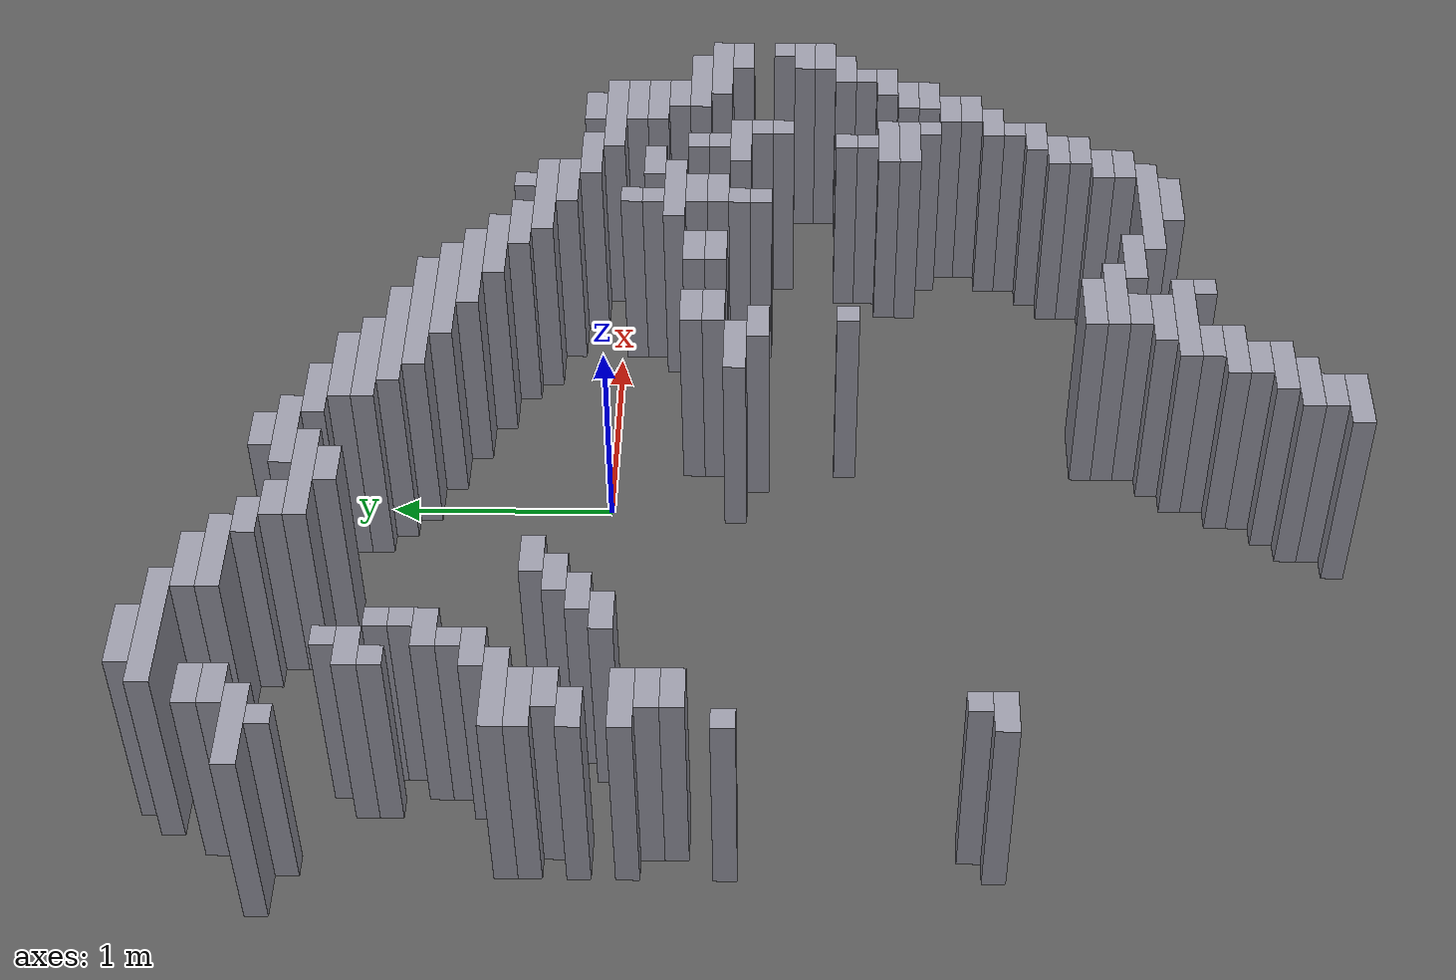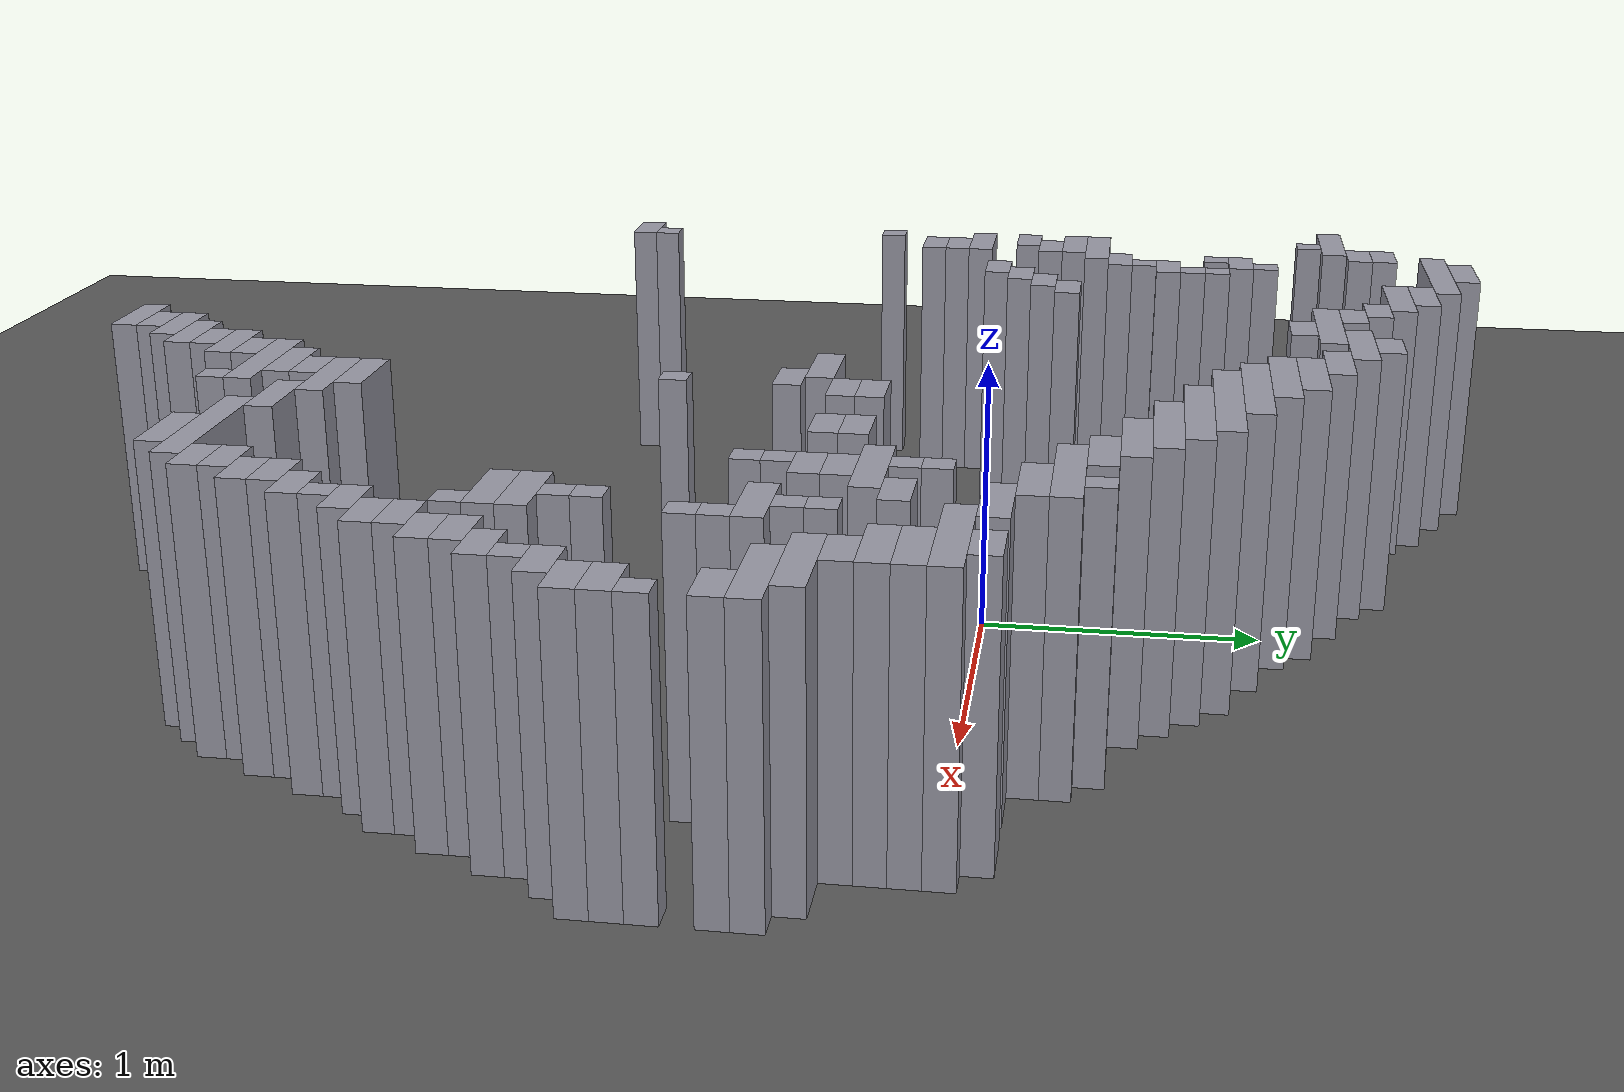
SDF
<sdf version="1.8">
 <world name="dimi">
  <model name="ground">
   <static>true</static>
   <link name="ground_link">
    <collision name="c"><geometry><plane><normal>0 0 1</normal><size>60 60</size></plane></geometry></collision>
    <visual name="v">
     <geometry><plane><normal>0 0 1</normal><size>60 60</size></plane></geometry>
     <material><ambient>0.3 0.3 0.3 1</ambient><diffuse>0.35 0.35 0.35 1</diffuse></material>
    </visual>
   </link>
  </model>
  <model name="walls">
   <static>true</static>
   <link name="wall_10">
    <pose>-1.6110 1.8290 0.5000 0 0 0</pose>
    <collision name="c"><geometry><box><size>0.3000 0.1000 1.0000</size></box></geometry></collision>
    <visual name="v">
     <geometry><box><size>0.3000 0.1000 1.0000</size></box></geometry>
     <material><ambient>0.5 0.5 0.55 1</ambient><diffuse>0.6 0.6 0.65 1</diffuse></material>
    </visual>
   </link>
   <link name="wall_13">
    <pose>-1.5610 1.7290 0.5000 0 0 0</pose>
    <collision name="c"><geometry><box><size>0.6000 0.1000 1.0000</size></box></geometry></collision>
    <visual name="v">
     <geometry><box><size>0.6000 0.1000 1.0000</size></box></geometry>
     <material><ambient>0.5 0.5 0.55 1</ambient><diffuse>0.6 0.6 0.65 1</diffuse></material>
    </visual>
   </link>
   <link name="wall_17">
    <pose>-1.2110 1.6290 0.5000 0 0 0</pose>
    <collision name="c"><geometry><box><size>0.3000 0.1000 1.0000</size></box></geometry></collision>
    <visual name="v">
     <geometry><box><size>0.3000 0.1000 1.0000</size></box></geometry>
     <material><ambient>0.5 0.5 0.55 1</ambient><diffuse>0.6 0.6 0.65 1</diffuse></material>
    </visual>
   </link>
   <link name="wall_21">
    <pose>-1.8610 1.5290 0.5000 0 0 0</pose>
    <collision name="c"><geometry><box><size>0.2000 0.1000 1.0000</size></box></geometry></collision>
    <visual name="v">
     <geometry><box><size>0.2000 0.1000 1.0000</size></box></geometry>
     <material><ambient>0.5 0.5 0.55 1</ambient><diffuse>0.6 0.6 0.65 1</diffuse></material>
    </visual>
   </link>
   <link name="wall_22">
    <pose>-1.1610 1.5290 0.5000 0 0 0</pose>
    <collision name="c"><geometry><box><size>0.4000 0.1000 1.0000</size></box></geometry></collision>
    <visual name="v">
     <geometry><box><size>0.4000 0.1000 1.0000</size></box></geometry>
     <material><ambient>0.5 0.5 0.55 1</ambient><diffuse>0.6 0.6 0.65 1</diffuse></material>
    </visual>
   </link>
   <link name="wall_27">
    <pose>-1.8610 1.4290 0.5000 0 0 0</pose>
    <collision name="c"><geometry><box><size>0.2000 0.1000 1.0000</size></box></geometry></collision>
    <visual name="v">
     <geometry><box><size>0.2000 0.1000 1.0000</size></box></geometry>
     <material><ambient>0.5 0.5 0.55 1</ambient><diffuse>0.6 0.6 0.65 1</diffuse></material>
    </visual>
   </link>
   <link name="wall_28">
    <pose>-0.9610 1.4290 0.5000 0 0 0</pose>
    <collision name="c"><geometry><box><size>0.2000 0.1000 1.0000</size></box></geometry></collision>
    <visual name="v">
     <geometry><box><size>0.2000 0.1000 1.0000</size></box></geometry>
     <material><ambient>0.5 0.5 0.55 1</ambient><diffuse>0.6 0.6 0.65 1</diffuse></material>
    </visual>
   </link>
   <link name="wall_29">
    <pose>-0.4610 1.4290 0.5000 0 0 0</pose>
    <collision name="c"><geometry><box><size>0.2000 0.1000 1.0000</size></box></geometry></collision>
    <visual name="v">
     <geometry><box><size>0.2000 0.1000 1.0000</size></box></geometry>
     <material><ambient>0.5 0.5 0.55 1</ambient><diffuse>0.6 0.6 0.65 1</diffuse></material>
    </visual>
   </link>
   <link name="wall_32">
    <pose>-2.0610 1.3290 0.5000 0 0 0</pose>
    <collision name="c"><geometry><box><size>0.4000 0.1000 1.0000</size></box></geometry></collision>
    <visual name="v">
     <geometry><box><size>0.4000 0.1000 1.0000</size></box></geometry>
     <material><ambient>0.5 0.5 0.55 1</ambient><diffuse>0.6 0.6 0.65 1</diffuse></material>
    </visual>
   </link>
   <link name="wall_33">
    <pose>-0.8610 1.3290 0.5000 0 0 0</pose>
    <collision name="c"><geometry><box><size>0.2000 0.1000 1.0000</size></box></geometry></collision>
    <visual name="v">
     <geometry><box><size>0.2000 0.1000 1.0000</size></box></geometry>
     <material><ambient>0.5 0.5 0.55 1</ambient><diffuse>0.6 0.6 0.65 1</diffuse></material>
    </visual>
   </link>
   <link name="wall_34">
    <pose>-0.4610 1.3290 0.5000 0 0 0</pose>
    <collision name="c"><geometry><box><size>0.4000 0.1000 1.0000</size></box></geometry></collision>
    <visual name="v">
     <geometry><box><size>0.4000 0.1000 1.0000</size></box></geometry>
     <material><ambient>0.5 0.5 0.55 1</ambient><diffuse>0.6 0.6 0.65 1</diffuse></material>
    </visual>
   </link>
   <link name="wall_37">
    <pose>-2.0110 1.2290 0.5000 0 0 0</pose>
    <collision name="c"><geometry><box><size>0.1000 0.1000 1.0000</size></box></geometry></collision>
    <visual name="v">
     <geometry><box><size>0.1000 0.1000 1.0000</size></box></geometry>
     <material><ambient>0.5 0.5 0.55 1</ambient><diffuse>0.6 0.6 0.65 1</diffuse></material>
    </visual>
   </link>
   <link name="wall_38">
    <pose>-0.7110 1.2290 0.5000 0 0 0</pose>
    <collision name="c"><geometry><box><size>0.5000 0.1000 1.0000</size></box></geometry></collision>
    <visual name="v">
     <geometry><box><size>0.5000 0.1000 1.0000</size></box></geometry>
     <material><ambient>0.5 0.5 0.55 1</ambient><diffuse>0.6 0.6 0.65 1</diffuse></material>
    </visual>
   </link>
   <link name="wall_39">
    <pose>-0.2110 1.2290 0.5000 0 0 0</pose>
    <collision name="c"><geometry><box><size>0.3000 0.1000 1.0000</size></box></geometry></collision>
    <visual name="v">
     <geometry><box><size>0.3000 0.1000 1.0000</size></box></geometry>
     <material><ambient>0.5 0.5 0.55 1</ambient><diffuse>0.6 0.6 0.65 1</diffuse></material>
    </visual>
   </link>
   <link name="wall_42">
    <pose>-0.6610 1.1290 0.5000 0 0 0</pose>
    <collision name="c"><geometry><box><size>0.2000 0.1000 1.0000</size></box></geometry></collision>
    <visual name="v">
     <geometry><box><size>0.2000 0.1000 1.0000</size></box></geometry>
     <material><ambient>0.5 0.5 0.55 1</ambient><diffuse>0.6 0.6 0.65 1</diffuse></material>
    </visual>
   </link>
   <link name="wall_43">
    <pose>-0.0610 1.1290 0.5000 0 0 0</pose>
    <collision name="c"><geometry><box><size>0.4000 0.1000 1.0000</size></box></geometry></collision>
    <visual name="v">
     <geometry><box><size>0.4000 0.1000 1.0000</size></box></geometry>
     <material><ambient>0.5 0.5 0.55 1</ambient><diffuse>0.6 0.6 0.65 1</diffuse></material>
    </visual>
   </link>
   <link name="wall_47">
    <pose>-1.6110 1.0290 0.5000 0 0 0</pose>
    <collision name="c"><geometry><box><size>0.1000 0.1000 1.0000</size></box></geometry></collision>
    <visual name="v">
     <geometry><box><size>0.1000 0.1000 1.0000</size></box></geometry>
     <material><ambient>0.5 0.5 0.55 1</ambient><diffuse>0.6 0.6 0.65 1</diffuse></material>
    </visual>
   </link>
   <link name="wall_48">
    <pose>-0.0110 1.0290 0.5000 0 0 0</pose>
    <collision name="c"><geometry><box><size>0.5000 0.1000 1.0000</size></box></geometry></collision>
    <visual name="v">
     <geometry><box><size>0.5000 0.1000 1.0000</size></box></geometry>
     <material><ambient>0.5 0.5 0.55 1</ambient><diffuse>0.6 0.6 0.65 1</diffuse></material>
    </visual>
   </link>
   <link name="wall_52">
    <pose>-1.6610 0.9290 0.5000 0 0 0</pose>
    <collision name="c"><geometry><box><size>0.2000 0.1000 1.0000</size></box></geometry></collision>
    <visual name="v">
     <geometry><box><size>0.2000 0.1000 1.0000</size></box></geometry>
     <material><ambient>0.5 0.5 0.55 1</ambient><diffuse>0.6 0.6 0.65 1</diffuse></material>
    </visual>
   </link>
   <link name="wall_53">
    <pose>0.1390 0.9290 0.5000 0 0 0</pose>
    <collision name="c"><geometry><box><size>0.6000 0.1000 1.0000</size></box></geometry></collision>
    <visual name="v">
     <geometry><box><size>0.6000 0.1000 1.0000</size></box></geometry>
     <material><ambient>0.5 0.5 0.55 1</ambient><diffuse>0.6 0.6 0.65 1</diffuse></material>
    </visual>
   </link>
   <link name="wall_57">
    <pose>-1.7110 0.8290 0.5000 0 0 0</pose>
    <collision name="c"><geometry><box><size>0.1000 0.1000 1.0000</size></box></geometry></collision>
    <visual name="v">
     <geometry><box><size>0.1000 0.1000 1.0000</size></box></geometry>
     <material><ambient>0.5 0.5 0.55 1</ambient><diffuse>0.6 0.6 0.65 1</diffuse></material>
    </visual>
   </link>
   <link name="wall_58">
    <pose>-1.5110 0.8290 0.5000 0 0 0</pose>
    <collision name="c"><geometry><box><size>0.1000 0.1000 1.0000</size></box></geometry></collision>
    <visual name="v">
     <geometry><box><size>0.1000 0.1000 1.0000</size></box></geometry>
     <material><ambient>0.5 0.5 0.55 1</ambient><diffuse>0.6 0.6 0.65 1</diffuse></material>
    </visual>
   </link>
   <link name="wall_59">
    <pose>0.2890 0.8290 0.5000 0 0 0</pose>
    <collision name="c"><geometry><box><size>0.7000 0.1000 1.0000</size></box></geometry></collision>
    <visual name="v">
     <geometry><box><size>0.7000 0.1000 1.0000</size></box></geometry>
     <material><ambient>0.5 0.5 0.55 1</ambient><diffuse>0.6 0.6 0.65 1</diffuse></material>
    </visual>
   </link>
   <link name="wall_62">
    <pose>-1.5110 0.7290 0.5000 0 0 0</pose>
    <collision name="c"><geometry><box><size>0.1000 0.1000 1.0000</size></box></geometry></collision>
    <visual name="v">
     <geometry><box><size>0.1000 0.1000 1.0000</size></box></geometry>
     <material><ambient>0.5 0.5 0.55 1</ambient><diffuse>0.6 0.6 0.65 1</diffuse></material>
    </visual>
   </link>
   <link name="wall_63">
    <pose>0.4390 0.7290 0.5000 0 0 0</pose>
    <collision name="c"><geometry><box><size>0.6000 0.1000 1.0000</size></box></geometry></collision>
    <visual name="v">
     <geometry><box><size>0.6000 0.1000 1.0000</size></box></geometry>
     <material><ambient>0.5 0.5 0.55 1</ambient><diffuse>0.6 0.6 0.65 1</diffuse></material>
    </visual>
   </link>
   <link name="wall_66">
    <pose>-1.5610 0.6290 0.5000 0 0 0</pose>
    <collision name="c"><geometry><box><size>0.2000 0.1000 1.0000</size></box></geometry></collision>
    <visual name="v">
     <geometry><box><size>0.2000 0.1000 1.0000</size></box></geometry>
     <material><ambient>0.5 0.5 0.55 1</ambient><diffuse>0.6 0.6 0.65 1</diffuse></material>
    </visual>
   </link>
   <link name="wall_67">
    <pose>0.5890 0.6290 0.5000 0 0 0</pose>
    <collision name="c"><geometry><box><size>0.5000 0.1000 1.0000</size></box></geometry></collision>
    <visual name="v">
     <geometry><box><size>0.5000 0.1000 1.0000</size></box></geometry>
     <material><ambient>0.5 0.5 0.55 1</ambient><diffuse>0.6 0.6 0.65 1</diffuse></material>
    </visual>
   </link>
   <link name="wall_71">
    <pose>-1.6110 0.5290 0.5000 0 0 0</pose>
    <collision name="c"><geometry><box><size>0.1000 0.1000 1.0000</size></box></geometry></collision>
    <visual name="v">
     <geometry><box><size>0.1000 0.1000 1.0000</size></box></geometry>
     <material><ambient>0.5 0.5 0.55 1</ambient><diffuse>0.6 0.6 0.65 1</diffuse></material>
    </visual>
   </link>
   <link name="wall_72">
    <pose>0.7390 0.5290 0.5000 0 0 0</pose>
    <collision name="c"><geometry><box><size>0.4000 0.1000 1.0000</size></box></geometry></collision>
    <visual name="v">
     <geometry><box><size>0.4000 0.1000 1.0000</size></box></geometry>
     <material><ambient>0.5 0.5 0.55 1</ambient><diffuse>0.6 0.6 0.65 1</diffuse></material>
    </visual>
   </link>
   <link name="wall_76">
    <pose>-1.6610 0.4290 0.5000 0 0 0</pose>
    <collision name="c"><geometry><box><size>0.2000 0.1000 1.0000</size></box></geometry></collision>
    <visual name="v">
     <geometry><box><size>0.2000 0.1000 1.0000</size></box></geometry>
     <material><ambient>0.5 0.5 0.55 1</ambient><diffuse>0.6 0.6 0.65 1</diffuse></material>
    </visual>
   </link>
   <link name="wall_77">
    <pose>0.8890 0.4290 0.5000 0 0 0</pose>
    <collision name="c"><geometry><box><size>0.3000 0.1000 1.0000</size></box></geometry></collision>
    <visual name="v">
     <geometry><box><size>0.3000 0.1000 1.0000</size></box></geometry>
     <material><ambient>0.5 0.5 0.55 1</ambient><diffuse>0.6 0.6 0.65 1</diffuse></material>
    </visual>
   </link>
   <link name="wall_78">
    <pose>1.1890 0.4290 0.5000 0 0 0</pose>
    <collision name="c"><geometry><box><size>0.1000 0.1000 1.0000</size></box></geometry></collision>
    <visual name="v">
     <geometry><box><size>0.1000 0.1000 1.0000</size></box></geometry>
     <material><ambient>0.5 0.5 0.55 1</ambient><diffuse>0.6 0.6 0.65 1</diffuse></material>
    </visual>
   </link>
   <link name="wall_81">
    <pose>-1.8610 0.3290 0.5000 0 0 0</pose>
    <collision name="c"><geometry><box><size>0.4000 0.1000 1.0000</size></box></geometry></collision>
    <visual name="v">
     <geometry><box><size>0.4000 0.1000 1.0000</size></box></geometry>
     <material><ambient>0.5 0.5 0.55 1</ambient><diffuse>0.6 0.6 0.65 1</diffuse></material>
    </visual>
   </link>
   <link name="wall_82">
    <pose>1.0890 0.3290 0.5000 0 0 0</pose>
    <collision name="c"><geometry><box><size>0.5000 0.1000 1.0000</size></box></geometry></collision>
    <visual name="v">
     <geometry><box><size>0.5000 0.1000 1.0000</size></box></geometry>
     <material><ambient>0.5 0.5 0.55 1</ambient><diffuse>0.6 0.6 0.65 1</diffuse></material>
    </visual>
   </link>
   <link name="wall_85">
    <pose>-1.9110 0.2290 0.5000 0 0 0</pose>
    <collision name="c"><geometry><box><size>0.3000 0.1000 1.0000</size></box></geometry></collision>
    <visual name="v">
     <geometry><box><size>0.3000 0.1000 1.0000</size></box></geometry>
     <material><ambient>0.5 0.5 0.55 1</ambient><diffuse>0.6 0.6 0.65 1</diffuse></material>
    </visual>
   </link>
   <link name="wall_86">
    <pose>-1.1610 0.2290 0.5000 0 0 0</pose>
    <collision name="c"><geometry><box><size>0.2000 0.1000 1.0000</size></box></geometry></collision>
    <visual name="v">
     <geometry><box><size>0.2000 0.1000 1.0000</size></box></geometry>
     <material><ambient>0.5 0.5 0.55 1</ambient><diffuse>0.6 0.6 0.65 1</diffuse></material>
    </visual>
   </link>
   <link name="wall_87">
    <pose>1.1890 0.2290 0.5000 0 0 0</pose>
    <collision name="c"><geometry><box><size>0.3000 0.1000 1.0000</size></box></geometry></collision>
    <visual name="v">
     <geometry><box><size>0.3000 0.1000 1.0000</size></box></geometry>
     <material><ambient>0.5 0.5 0.55 1</ambient><diffuse>0.6 0.6 0.65 1</diffuse></material>
    </visual>
   </link>
   <link name="wall_90">
    <pose>-1.8610 0.1290 0.5000 0 0 0</pose>
    <collision name="c"><geometry><box><size>0.2000 0.1000 1.0000</size></box></geometry></collision>
    <visual name="v">
     <geometry><box><size>0.2000 0.1000 1.0000</size></box></geometry>
     <material><ambient>0.5 0.5 0.55 1</ambient><diffuse>0.6 0.6 0.65 1</diffuse></material>
    </visual>
   </link>
   <link name="wall_91">
    <pose>-1.2610 0.1290 0.5000 0 0 0</pose>
    <collision name="c"><geometry><box><size>0.2000 0.1000 1.0000</size></box></geometry></collision>
    <visual name="v">
     <geometry><box><size>0.2000 0.1000 1.0000</size></box></geometry>
     <material><ambient>0.5 0.5 0.55 1</ambient><diffuse>0.6 0.6 0.65 1</diffuse></material>
    </visual>
   </link>
   <link name="wall_92">
    <pose>1.3890 0.1290 0.5000 0 0 0</pose>
    <collision name="c"><geometry><box><size>0.3000 0.1000 1.0000</size></box></geometry></collision>
    <visual name="v">
     <geometry><box><size>0.3000 0.1000 1.0000</size></box></geometry>
     <material><ambient>0.5 0.5 0.55 1</ambient><diffuse>0.6 0.6 0.65 1</diffuse></material>
    </visual>
   </link>
   <link name="wall_93">
    <pose>1.7390 0.1290 0.5000 0 0 0</pose>
    <collision name="c"><geometry><box><size>0.2000 0.1000 1.0000</size></box></geometry></collision>
    <visual name="v">
     <geometry><box><size>0.2000 0.1000 1.0000</size></box></geometry>
     <material><ambient>0.5 0.5 0.55 1</ambient><diffuse>0.6 0.6 0.65 1</diffuse></material>
    </visual>
   </link>
   <link name="wall_97">
    <pose>-1.9610 0.0290 0.5000 0 0 0</pose>
    <collision name="c"><geometry><box><size>0.2000 0.1000 1.0000</size></box></geometry></collision>
    <visual name="v">
     <geometry><box><size>0.2000 0.1000 1.0000</size></box></geometry>
     <material><ambient>0.5 0.5 0.55 1</ambient><diffuse>0.6 0.6 0.65 1</diffuse></material>
    </visual>
   </link>
   <link name="wall_98">
    <pose>-1.3610 0.0290 0.5000 0 0 0</pose>
    <collision name="c"><geometry><box><size>0.2000 0.1000 1.0000</size></box></geometry></collision>
    <visual name="v">
     <geometry><box><size>0.2000 0.1000 1.0000</size></box></geometry>
     <material><ambient>0.5 0.5 0.55 1</ambient><diffuse>0.6 0.6 0.65 1</diffuse></material>
    </visual>
   </link>
   <link name="wall_99">
    <pose>1.6890 0.0290 0.5000 0 0 0</pose>
    <collision name="c"><geometry><box><size>0.5000 0.1000 1.0000</size></box></geometry></collision>
    <visual name="v">
     <geometry><box><size>0.5000 0.1000 1.0000</size></box></geometry>
     <material><ambient>0.5 0.5 0.55 1</ambient><diffuse>0.6 0.6 0.65 1</diffuse></material>
    </visual>
   </link>
   <link name="wall_105">
    <pose>-1.4610 -0.0710 0.5000 0 0 0</pose>
    <collision name="c"><geometry><box><size>0.2000 0.1000 1.0000</size></box></geometry></collision>
    <visual name="v">
     <geometry><box><size>0.2000 0.1000 1.0000</size></box></geometry>
     <material><ambient>0.5 0.5 0.55 1</ambient><diffuse>0.6 0.6 0.65 1</diffuse></material>
    </visual>
   </link>
   <link name="wall_106">
    <pose>1.0890 -0.0710 0.5000 0 0 0</pose>
    <collision name="c"><geometry><box><size>0.1000 0.1000 1.0000</size></box></geometry></collision>
    <visual name="v">
     <geometry><box><size>0.1000 0.1000 1.0000</size></box></geometry>
     <material><ambient>0.5 0.5 0.55 1</ambient><diffuse>0.6 0.6 0.65 1</diffuse></material>
    </visual>
   </link>
   <link name="wall_107">
    <pose>1.7890 -0.0710 0.5000 0 0 0</pose>
    <collision name="c"><geometry><box><size>0.3000 0.1000 1.0000</size></box></geometry></collision>
    <visual name="v">
     <geometry><box><size>0.3000 0.1000 1.0000</size></box></geometry>
     <material><ambient>0.5 0.5 0.55 1</ambient><diffuse>0.6 0.6 0.65 1</diffuse></material>
    </visual>
   </link>
   <link name="wall_114">
    <pose>-1.9110 -0.1710 0.5000 0 0 0</pose>
    <collision name="c"><geometry><box><size>0.3000 0.1000 1.0000</size></box></geometry></collision>
    <visual name="v">
     <geometry><box><size>0.3000 0.1000 1.0000</size></box></geometry>
     <material><ambient>0.5 0.5 0.55 1</ambient><diffuse>0.6 0.6 0.65 1</diffuse></material>
    </visual>
   </link>
   <link name="wall_115">
    <pose>1.0890 -0.1710 0.5000 0 0 0</pose>
    <collision name="c"><geometry><box><size>0.1000 0.1000 1.0000</size></box></geometry></collision>
    <visual name="v">
     <geometry><box><size>0.1000 0.1000 1.0000</size></box></geometry>
     <material><ambient>0.5 0.5 0.55 1</ambient><diffuse>0.6 0.6 0.65 1</diffuse></material>
    </visual>
   </link>
   <link name="wall_116">
    <pose>1.3390 -0.1710 0.5000 0 0 0</pose>
    <collision name="c"><geometry><box><size>0.2000 0.1000 1.0000</size></box></geometry></collision>
    <visual name="v">
     <geometry><box><size>0.2000 0.1000 1.0000</size></box></geometry>
     <material><ambient>0.5 0.5 0.55 1</ambient><diffuse>0.6 0.6 0.65 1</diffuse></material>
    </visual>
   </link>
   <link name="wall_117">
    <pose>1.7890 -0.1710 0.5000 0 0 0</pose>
    <collision name="c"><geometry><box><size>0.3000 0.1000 1.0000</size></box></geometry></collision>
    <visual name="v">
     <geometry><box><size>0.3000 0.1000 1.0000</size></box></geometry>
     <material><ambient>0.5 0.5 0.55 1</ambient><diffuse>0.6 0.6 0.65 1</diffuse></material>
    </visual>
   </link>
   <link name="wall_124">
    <pose>-1.8610 -0.2710 0.5000 0 0 0</pose>
    <collision name="c"><geometry><box><size>0.2000 0.1000 1.0000</size></box></geometry></collision>
    <visual name="v">
     <geometry><box><size>0.2000 0.1000 1.0000</size></box></geometry>
     <material><ambient>0.5 0.5 0.55 1</ambient><diffuse>0.6 0.6 0.65 1</diffuse></material>
    </visual>
   </link>
   <link name="wall_125">
    <pose>1.1390 -0.2710 0.5000 0 0 0</pose>
    <collision name="c"><geometry><box><size>0.4000 0.1000 1.0000</size></box></geometry></collision>
    <visual name="v">
     <geometry><box><size>0.4000 0.1000 1.0000</size></box></geometry>
     <material><ambient>0.5 0.5 0.55 1</ambient><diffuse>0.6 0.6 0.65 1</diffuse></material>
    </visual>
   </link>
   <link name="wall_126">
    <pose>1.8390 -0.2710 0.5000 0 0 0</pose>
    <collision name="c"><geometry><box><size>0.2000 0.1000 1.0000</size></box></geometry></collision>
    <visual name="v">
     <geometry><box><size>0.2000 0.1000 1.0000</size></box></geometry>
     <material><ambient>0.5 0.5 0.55 1</ambient><diffuse>0.6 0.6 0.65 1</diffuse></material>
    </visual>
   </link>
   <link name="wall_134">
    <pose>-1.8610 -0.3710 0.5000 0 0 0</pose>
    <collision name="c"><geometry><box><size>0.2000 0.1000 1.0000</size></box></geometry></collision>
    <visual name="v">
     <geometry><box><size>0.2000 0.1000 1.0000</size></box></geometry>
     <material><ambient>0.5 0.5 0.55 1</ambient><diffuse>0.6 0.6 0.65 1</diffuse></material>
    </visual>
   </link>
   <link name="wall_135">
    <pose>0.3390 -0.3710 0.5000 0 0 0</pose>
    <collision name="c"><geometry><box><size>0.2000 0.1000 1.0000</size></box></geometry></collision>
    <visual name="v">
     <geometry><box><size>0.2000 0.1000 1.0000</size></box></geometry>
     <material><ambient>0.5 0.5 0.55 1</ambient><diffuse>0.6 0.6 0.65 1</diffuse></material>
    </visual>
   </link>
   <link name="wall_136">
    <pose>0.7390 -0.3710 0.5000 0 0 0</pose>
    <collision name="c"><geometry><box><size>0.2000 0.1000 1.0000</size></box></geometry></collision>
    <visual name="v">
     <geometry><box><size>0.2000 0.1000 1.0000</size></box></geometry>
     <material><ambient>0.5 0.5 0.55 1</ambient><diffuse>0.6 0.6 0.65 1</diffuse></material>
    </visual>
   </link>
   <link name="wall_137">
    <pose>1.1390 -0.3710 0.5000 0 0 0</pose>
    <collision name="c"><geometry><box><size>0.2000 0.1000 1.0000</size></box></geometry></collision>
    <visual name="v">
     <geometry><box><size>0.2000 0.1000 1.0000</size></box></geometry>
     <material><ambient>0.5 0.5 0.55 1</ambient><diffuse>0.6 0.6 0.65 1</diffuse></material>
    </visual>
   </link>
   <link name="wall_138">
    <pose>1.4890 -0.3710 0.5000 0 0 0</pose>
    <collision name="c"><geometry><box><size>0.1000 0.1000 1.0000</size></box></geometry></collision>
    <visual name="v">
     <geometry><box><size>0.1000 0.1000 1.0000</size></box></geometry>
     <material><ambient>0.5 0.5 0.55 1</ambient><diffuse>0.6 0.6 0.65 1</diffuse></material>
    </visual>
   </link>
   <link name="wall_139">
    <pose>1.9390 -0.3710 0.5000 0 0 0</pose>
    <collision name="c"><geometry><box><size>0.4000 0.1000 1.0000</size></box></geometry></collision>
    <visual name="v">
     <geometry><box><size>0.4000 0.1000 1.0000</size></box></geometry>
     <material><ambient>0.5 0.5 0.55 1</ambient><diffuse>0.6 0.6 0.65 1</diffuse></material>
    </visual>
   </link>
   <link name="wall_146">
    <pose>0.3390 -0.4710 0.5000 0 0 0</pose>
    <collision name="c"><geometry><box><size>0.2000 0.1000 1.0000</size></box></geometry></collision>
    <visual name="v">
     <geometry><box><size>0.2000 0.1000 1.0000</size></box></geometry>
     <material><ambient>0.5 0.5 0.55 1</ambient><diffuse>0.6 0.6 0.65 1</diffuse></material>
    </visual>
   </link>
   <link name="wall_147">
    <pose>0.7390 -0.4710 0.5000 0 0 0</pose>
    <collision name="c"><geometry><box><size>0.2000 0.1000 1.0000</size></box></geometry></collision>
    <visual name="v">
     <geometry><box><size>0.2000 0.1000 1.0000</size></box></geometry>
     <material><ambient>0.5 0.5 0.55 1</ambient><diffuse>0.6 0.6 0.65 1</diffuse></material>
    </visual>
   </link>
   <link name="wall_148">
    <pose>1.1390 -0.4710 0.5000 0 0 0</pose>
    <collision name="c"><geometry><box><size>0.2000 0.1000 1.0000</size></box></geometry></collision>
    <visual name="v">
     <geometry><box><size>0.2000 0.1000 1.0000</size></box></geometry>
     <material><ambient>0.5 0.5 0.55 1</ambient><diffuse>0.6 0.6 0.65 1</diffuse></material>
    </visual>
   </link>
   <link name="wall_149">
    <pose>1.4890 -0.4710 0.5000 0 0 0</pose>
    <collision name="c"><geometry><box><size>0.1000 0.1000 1.0000</size></box></geometry></collision>
    <visual name="v">
     <geometry><box><size>0.1000 0.1000 1.0000</size></box></geometry>
     <material><ambient>0.5 0.5 0.55 1</ambient><diffuse>0.6 0.6 0.65 1</diffuse></material>
    </visual>
   </link>
   <link name="wall_150">
    <pose>2.0390 -0.4710 0.5000 0 0 0</pose>
    <collision name="c"><geometry><box><size>0.4000 0.1000 1.0000</size></box></geometry></collision>
    <visual name="v">
     <geometry><box><size>0.4000 0.1000 1.0000</size></box></geometry>
     <material><ambient>0.5 0.5 0.55 1</ambient><diffuse>0.6 0.6 0.65 1</diffuse></material>
    </visual>
   </link>
   <link name="wall_156">
    <pose>-2.0110 -0.5710 0.5000 0 0 0</pose>
    <collision name="c"><geometry><box><size>0.1000 0.1000 1.0000</size></box></geometry></collision>
    <visual name="v">
     <geometry><box><size>0.1000 0.1000 1.0000</size></box></geometry>
     <material><ambient>0.5 0.5 0.55 1</ambient><diffuse>0.6 0.6 0.65 1</diffuse></material>
    </visual>
   </link>
   <link name="wall_157">
    <pose>0.0890 -0.5710 0.5000 0 0 0</pose>
    <collision name="c"><geometry><box><size>0.3000 0.1000 1.0000</size></box></geometry></collision>
    <visual name="v">
     <geometry><box><size>0.3000 0.1000 1.0000</size></box></geometry>
     <material><ambient>0.5 0.5 0.55 1</ambient><diffuse>0.6 0.6 0.65 1</diffuse></material>
    </visual>
   </link>
   <link name="wall_158">
    <pose>1.0890 -0.5710 0.5000 0 0 0</pose>
    <collision name="c"><geometry><box><size>0.1000 0.1000 1.0000</size></box></geometry></collision>
    <visual name="v">
     <geometry><box><size>0.1000 0.1000 1.0000</size></box></geometry>
     <material><ambient>0.5 0.5 0.55 1</ambient><diffuse>0.6 0.6 0.65 1</diffuse></material>
    </visual>
   </link>
   <link name="wall_159">
    <pose>1.4890 -0.5710 0.5000 0 0 0</pose>
    <collision name="c"><geometry><box><size>0.3000 0.1000 1.0000</size></box></geometry></collision>
    <visual name="v">
     <geometry><box><size>0.3000 0.1000 1.0000</size></box></geometry>
     <material><ambient>0.5 0.5 0.55 1</ambient><diffuse>0.6 0.6 0.65 1</diffuse></material>
    </visual>
   </link>
   <link name="wall_160">
    <pose>2.1390 -0.5710 0.5000 0 0 0</pose>
    <collision name="c"><geometry><box><size>0.2000 0.1000 1.0000</size></box></geometry></collision>
    <visual name="v">
     <geometry><box><size>0.2000 0.1000 1.0000</size></box></geometry>
     <material><ambient>0.5 0.5 0.55 1</ambient><diffuse>0.6 0.6 0.65 1</diffuse></material>
    </visual>
   </link>
   <link name="wall_167">
    <pose>0.2390 -0.6710 0.5000 0 0 0</pose>
    <collision name="c"><geometry><box><size>0.2000 0.1000 1.0000</size></box></geometry></collision>
    <visual name="v">
     <geometry><box><size>0.2000 0.1000 1.0000</size></box></geometry>
     <material><ambient>0.5 0.5 0.55 1</ambient><diffuse>0.6 0.6 0.65 1</diffuse></material>
    </visual>
   </link>
   <link name="wall_168">
    <pose>1.0890 -0.6710 0.5000 0 0 0</pose>
    <collision name="c"><geometry><box><size>0.1000 0.1000 1.0000</size></box></geometry></collision>
    <visual name="v">
     <geometry><box><size>0.1000 0.1000 1.0000</size></box></geometry>
     <material><ambient>0.5 0.5 0.55 1</ambient><diffuse>0.6 0.6 0.65 1</diffuse></material>
    </visual>
   </link>
   <link name="wall_169">
    <pose>1.5890 -0.6710 0.5000 0 0 0</pose>
    <collision name="c"><geometry><box><size>0.1000 0.1000 1.0000</size></box></geometry></collision>
    <visual name="v">
     <geometry><box><size>0.1000 0.1000 1.0000</size></box></geometry>
     <material><ambient>0.5 0.5 0.55 1</ambient><diffuse>0.6 0.6 0.65 1</diffuse></material>
    </visual>
   </link>
   <link name="wall_174">
    <pose>1.5890 -0.7710 0.5000 0 0 0</pose>
    <collision name="c"><geometry><box><size>0.1000 0.1000 1.0000</size></box></geometry></collision>
    <visual name="v">
     <geometry><box><size>0.1000 0.1000 1.0000</size></box></geometry>
     <material><ambient>0.5 0.5 0.55 1</ambient><diffuse>0.6 0.6 0.65 1</diffuse></material>
    </visual>
   </link>
   <link name="wall_175">
    <pose>2.1890 -0.7710 0.5000 0 0 0</pose>
    <collision name="c"><geometry><box><size>0.1000 0.1000 1.0000</size></box></geometry></collision>
    <visual name="v">
     <geometry><box><size>0.1000 0.1000 1.0000</size></box></geometry>
     <material><ambient>0.5 0.5 0.55 1</ambient><diffuse>0.6 0.6 0.65 1</diffuse></material>
    </visual>
   </link>
   <link name="wall_180">
    <pose>2.1390 -0.8710 0.5000 0 0 0</pose>
    <collision name="c"><geometry><box><size>0.2000 0.1000 1.0000</size></box></geometry></collision>
    <visual name="v">
     <geometry><box><size>0.2000 0.1000 1.0000</size></box></geometry>
     <material><ambient>0.5 0.5 0.55 1</ambient><diffuse>0.6 0.6 0.65 1</diffuse></material>
    </visual>
   </link>
   <link name="wall_186">
    <pose>2.1390 -0.9710 0.5000 0 0 0</pose>
    <collision name="c"><geometry><box><size>0.2000 0.1000 1.0000</size></box></geometry></collision>
    <visual name="v">
     <geometry><box><size>0.2000 0.1000 1.0000</size></box></geometry>
     <material><ambient>0.5 0.5 0.55 1</ambient><diffuse>0.6 0.6 0.65 1</diffuse></material>
    </visual>
   </link>
   <link name="wall_191">
    <pose>0.2890 -1.0710 0.5000 0 0 0</pose>
    <collision name="c"><geometry><box><size>0.1000 0.1000 1.0000</size></box></geometry></collision>
    <visual name="v">
     <geometry><box><size>0.1000 0.1000 1.0000</size></box></geometry>
     <material><ambient>0.5 0.5 0.55 1</ambient><diffuse>0.6 0.6 0.65 1</diffuse></material>
    </visual>
   </link>
   <link name="wall_192">
    <pose>1.4890 -1.0710 0.5000 0 0 0</pose>
    <collision name="c"><geometry><box><size>0.1000 0.1000 1.0000</size></box></geometry></collision>
    <visual name="v">
     <geometry><box><size>0.1000 0.1000 1.0000</size></box></geometry>
     <material><ambient>0.5 0.5 0.55 1</ambient><diffuse>0.6 0.6 0.65 1</diffuse></material>
    </visual>
   </link>
   <link name="wall_193">
    <pose>2.0390 -1.0710 0.5000 0 0 0</pose>
    <collision name="c"><geometry><box><size>0.2000 0.1000 1.0000</size></box></geometry></collision>
    <visual name="v">
     <geometry><box><size>0.2000 0.1000 1.0000</size></box></geometry>
     <material><ambient>0.5 0.5 0.55 1</ambient><diffuse>0.6 0.6 0.65 1</diffuse></material>
    </visual>
   </link>
   <link name="wall_198">
    <pose>1.4890 -1.1710 0.5000 0 0 0</pose>
    <collision name="c"><geometry><box><size>0.1000 0.1000 1.0000</size></box></geometry></collision>
    <visual name="v">
     <geometry><box><size>0.1000 0.1000 1.0000</size></box></geometry>
     <material><ambient>0.5 0.5 0.55 1</ambient><diffuse>0.6 0.6 0.65 1</diffuse></material>
    </visual>
   </link>
   <link name="wall_199">
    <pose>1.9890 -1.1710 0.5000 0 0 0</pose>
    <collision name="c"><geometry><box><size>0.1000 0.1000 1.0000</size></box></geometry></collision>
    <visual name="v">
     <geometry><box><size>0.1000 0.1000 1.0000</size></box></geometry>
     <material><ambient>0.5 0.5 0.55 1</ambient><diffuse>0.6 0.6 0.65 1</diffuse></material>
    </visual>
   </link>
   <link name="wall_206">
    <pose>1.4890 -1.2710 0.5000 0 0 0</pose>
    <collision name="c"><geometry><box><size>0.3000 0.1000 1.0000</size></box></geometry></collision>
    <visual name="v">
     <geometry><box><size>0.3000 0.1000 1.0000</size></box></geometry>
     <material><ambient>0.5 0.5 0.55 1</ambient><diffuse>0.6 0.6 0.65 1</diffuse></material>
    </visual>
   </link>
   <link name="wall_207">
    <pose>1.9390 -1.2710 0.5000 0 0 0</pose>
    <collision name="c"><geometry><box><size>0.2000 0.1000 1.0000</size></box></geometry></collision>
    <visual name="v">
     <geometry><box><size>0.2000 0.1000 1.0000</size></box></geometry>
     <material><ambient>0.5 0.5 0.55 1</ambient><diffuse>0.6 0.6 0.65 1</diffuse></material>
    </visual>
   </link>
   <link name="wall_215">
    <pose>1.4890 -1.3710 0.5000 0 0 0</pose>
    <collision name="c"><geometry><box><size>0.3000 0.1000 1.0000</size></box></geometry></collision>
    <visual name="v">
     <geometry><box><size>0.3000 0.1000 1.0000</size></box></geometry>
     <material><ambient>0.5 0.5 0.55 1</ambient><diffuse>0.6 0.6 0.65 1</diffuse></material>
    </visual>
   </link>
   <link name="wall_216">
    <pose>1.8390 -1.3710 0.5000 0 0 0</pose>
    <collision name="c"><geometry><box><size>0.2000 0.1000 1.0000</size></box></geometry></collision>
    <visual name="v">
     <geometry><box><size>0.2000 0.1000 1.0000</size></box></geometry>
     <material><ambient>0.5 0.5 0.55 1</ambient><diffuse>0.6 0.6 0.65 1</diffuse></material>
    </visual>
   </link>
   <link name="wall_224">
    <pose>1.5890 -1.4710 0.5000 0 0 0</pose>
    <collision name="c"><geometry><box><size>0.1000 0.1000 1.0000</size></box></geometry></collision>
    <visual name="v">
     <geometry><box><size>0.1000 0.1000 1.0000</size></box></geometry>
     <material><ambient>0.5 0.5 0.55 1</ambient><diffuse>0.6 0.6 0.65 1</diffuse></material>
    </visual>
   </link>
   <link name="wall_225">
    <pose>1.8390 -1.4710 0.5000 0 0 0</pose>
    <collision name="c"><geometry><box><size>0.2000 0.1000 1.0000</size></box></geometry></collision>
    <visual name="v">
     <geometry><box><size>0.2000 0.1000 1.0000</size></box></geometry>
     <material><ambient>0.5 0.5 0.55 1</ambient><diffuse>0.6 0.6 0.65 1</diffuse></material>
    </visual>
   </link>
   <link name="wall_233">
    <pose>-1.9110 -1.5710 0.5000 0 0 0</pose>
    <collision name="c"><geometry><box><size>0.1000 0.1000 1.0000</size></box></geometry></collision>
    <visual name="v">
     <geometry><box><size>0.1000 0.1000 1.0000</size></box></geometry>
     <material><ambient>0.5 0.5 0.55 1</ambient><diffuse>0.6 0.6 0.65 1</diffuse></material>
    </visual>
   </link>
   <link name="wall_234">
    <pose>1.7390 -1.5710 0.5000 0 0 0</pose>
    <collision name="c"><geometry><box><size>0.2000 0.1000 1.0000</size></box></geometry></collision>
    <visual name="v">
     <geometry><box><size>0.2000 0.1000 1.0000</size></box></geometry>
     <material><ambient>0.5 0.5 0.55 1</ambient><diffuse>0.6 0.6 0.65 1</diffuse></material>
    </visual>
   </link>
   <link name="wall_240">
    <pose>-1.9610 -1.6710 0.5000 0 0 0</pose>
    <collision name="c"><geometry><box><size>0.2000 0.1000 1.0000</size></box></geometry></collision>
    <visual name="v">
     <geometry><box><size>0.2000 0.1000 1.0000</size></box></geometry>
     <material><ambient>0.5 0.5 0.55 1</ambient><diffuse>0.6 0.6 0.65 1</diffuse></material>
    </visual>
   </link>
   <link name="wall_241">
    <pose>1.7390 -1.6710 0.5000 0 0 0</pose>
    <collision name="c"><geometry><box><size>0.2000 0.1000 1.0000</size></box></geometry></collision>
    <visual name="v">
     <geometry><box><size>0.2000 0.1000 1.0000</size></box></geometry>
     <material><ambient>0.5 0.5 0.55 1</ambient><diffuse>0.6 0.6 0.65 1</diffuse></material>
    </visual>
   </link>
   <link name="wall_248">
    <pose>1.6390 -1.7710 0.5000 0 0 0</pose>
    <collision name="c"><geometry><box><size>0.2000 0.1000 1.0000</size></box></geometry></collision>
    <visual name="v">
     <geometry><box><size>0.2000 0.1000 1.0000</size></box></geometry>
     <material><ambient>0.5 0.5 0.55 1</ambient><diffuse>0.6 0.6 0.65 1</diffuse></material>
    </visual>
   </link>
   <link name="wall_255">
    <pose>1.5890 -1.8710 0.5000 0 0 0</pose>
    <collision name="c"><geometry><box><size>0.1000 0.1000 1.0000</size></box></geometry></collision>
    <visual name="v">
     <geometry><box><size>0.1000 0.1000 1.0000</size></box></geometry>
     <material><ambient>0.5 0.5 0.55 1</ambient><diffuse>0.6 0.6 0.65 1</diffuse></material>
    </visual>
   </link>
   <link name="wall_262">
    <pose>1.5390 -1.9710 0.5000 0 0 0</pose>
    <collision name="c"><geometry><box><size>0.2000 0.1000 1.0000</size></box></geometry></collision>
    <visual name="v">
     <geometry><box><size>0.2000 0.1000 1.0000</size></box></geometry>
     <material><ambient>0.5 0.5 0.55 1</ambient><diffuse>0.6 0.6 0.65 1</diffuse></material>
    </visual>
   </link>
   <link name="wall_269">
    <pose>1.4390 -2.0710 0.5000 0 0 0</pose>
    <collision name="c"><geometry><box><size>0.2000 0.1000 1.0000</size></box></geometry></collision>
    <visual name="v">
     <geometry><box><size>0.2000 0.1000 1.0000</size></box></geometry>
     <material><ambient>0.5 0.5 0.55 1</ambient><diffuse>0.6 0.6 0.65 1</diffuse></material>
    </visual>
   </link>
   <link name="wall_278">
    <pose>0.3890 -2.1710 0.5000 0 0 0</pose>
    <collision name="c"><geometry><box><size>0.3000 0.1000 1.0000</size></box></geometry></collision>
    <visual name="v">
     <geometry><box><size>0.3000 0.1000 1.0000</size></box></geometry>
     <material><ambient>0.5 0.5 0.55 1</ambient><diffuse>0.6 0.6 0.65 1</diffuse></material>
    </visual>
   </link>
   <link name="wall_279">
    <pose>1.4390 -2.1710 0.5000 0 0 0</pose>
    <collision name="c"><geometry><box><size>0.2000 0.1000 1.0000</size></box></geometry></collision>
    <visual name="v">
     <geometry><box><size>0.2000 0.1000 1.0000</size></box></geometry>
     <material><ambient>0.5 0.5 0.55 1</ambient><diffuse>0.6 0.6 0.65 1</diffuse></material>
    </visual>
   </link>
   <link name="wall_287">
    <pose>0.4390 -2.2710 0.5000 0 0 0</pose>
    <collision name="c"><geometry><box><size>0.4000 0.1000 1.0000</size></box></geometry></collision>
    <visual name="v">
     <geometry><box><size>0.4000 0.1000 1.0000</size></box></geometry>
     <material><ambient>0.5 0.5 0.55 1</ambient><diffuse>0.6 0.6 0.65 1</diffuse></material>
    </visual>
   </link>
   <link name="wall_288">
    <pose>1.3390 -2.2710 0.5000 0 0 0</pose>
    <collision name="c"><geometry><box><size>0.2000 0.1000 1.0000</size></box></geometry></collision>
    <visual name="v">
     <geometry><box><size>0.2000 0.1000 1.0000</size></box></geometry>
     <material><ambient>0.5 0.5 0.55 1</ambient><diffuse>0.6 0.6 0.65 1</diffuse></material>
    </visual>
   </link>
   <link name="wall_296">
    <pose>0.3390 -2.3710 0.5000 0 0 0</pose>
    <collision name="c"><geometry><box><size>0.2000 0.1000 1.0000</size></box></geometry></collision>
    <visual name="v">
     <geometry><box><size>0.2000 0.1000 1.0000</size></box></geometry>
     <material><ambient>0.5 0.5 0.55 1</ambient><diffuse>0.6 0.6 0.65 1</diffuse></material>
    </visual>
   </link>
   <link name="wall_297">
    <pose>0.6890 -2.3710 0.5000 0 0 0</pose>
    <collision name="c"><geometry><box><size>0.3000 0.1000 1.0000</size></box></geometry></collision>
    <visual name="v">
     <geometry><box><size>0.3000 0.1000 1.0000</size></box></geometry>
     <material><ambient>0.5 0.5 0.55 1</ambient><diffuse>0.6 0.6 0.65 1</diffuse></material>
    </visual>
   </link>
   <link name="wall_298">
    <pose>1.3390 -2.3710 0.5000 0 0 0</pose>
    <collision name="c"><geometry><box><size>0.2000 0.1000 1.0000</size></box></geometry></collision>
    <visual name="v">
     <geometry><box><size>0.2000 0.1000 1.0000</size></box></geometry>
     <material><ambient>0.5 0.5 0.55 1</ambient><diffuse>0.6 0.6 0.65 1</diffuse></material>
    </visual>
   </link>
   <link name="wall_306">
    <pose>0.2890 -2.4710 0.5000 0 0 0</pose>
    <collision name="c"><geometry><box><size>0.3000 0.1000 1.0000</size></box></geometry></collision>
    <visual name="v">
     <geometry><box><size>0.3000 0.1000 1.0000</size></box></geometry>
     <material><ambient>0.5 0.5 0.55 1</ambient><diffuse>0.6 0.6 0.65 1</diffuse></material>
    </visual>
   </link>
   <link name="wall_307">
    <pose>1.0390 -2.4710 0.5000 0 0 0</pose>
    <collision name="c"><geometry><box><size>0.6000 0.1000 1.0000</size></box></geometry></collision>
    <visual name="v">
     <geometry><box><size>0.6000 0.1000 1.0000</size></box></geometry>
     <material><ambient>0.5 0.5 0.55 1</ambient><diffuse>0.6 0.6 0.65 1</diffuse></material>
    </visual>
   </link>
   <link name="wall_313">
    <pose>0.2890 -2.5710 0.5000 0 0 0</pose>
    <collision name="c"><geometry><box><size>0.5000 0.1000 1.0000</size></box></geometry></collision>
    <visual name="v">
     <geometry><box><size>0.5000 0.1000 1.0000</size></box></geometry>
     <material><ambient>0.5 0.5 0.55 1</ambient><diffuse>0.6 0.6 0.65 1</diffuse></material>
    </visual>
   </link>
   <link name="wall_314">
    <pose>1.0890 -2.5710 0.5000 0 0 0</pose>
    <collision name="c"><geometry><box><size>0.3000 0.1000 1.0000</size></box></geometry></collision>
    <visual name="v">
     <geometry><box><size>0.3000 0.1000 1.0000</size></box></geometry>
     <material><ambient>0.5 0.5 0.55 1</ambient><diffuse>0.6 0.6 0.65 1</diffuse></material>
    </visual>
   </link>
   <link name="wall_320">
    <pose>0.1390 -2.6710 0.5000 0 0 0</pose>
    <collision name="c"><geometry><box><size>0.2000 0.1000 1.0000</size></box></geometry></collision>
    <visual name="v">
     <geometry><box><size>0.2000 0.1000 1.0000</size></box></geometry>
     <material><ambient>0.5 0.5 0.55 1</ambient><diffuse>0.6 0.6 0.65 1</diffuse></material>
    </visual>
   </link>
   <link name="wall_321">
    <pose>0.4890 -2.6710 0.5000 0 0 0</pose>
    <collision name="c"><geometry><box><size>0.1000 0.1000 1.0000</size></box></geometry></collision>
    <visual name="v">
     <geometry><box><size>0.1000 0.1000 1.0000</size></box></geometry>
     <material><ambient>0.5 0.5 0.55 1</ambient><diffuse>0.6 0.6 0.65 1</diffuse></material>
    </visual>
   </link>
   <link name="wall_325">
    <pose>0.0890 -2.7710 0.5000 0 0 0</pose>
    <collision name="c"><geometry><box><size>0.3000 0.1000 1.0000</size></box></geometry></collision>
    <visual name="v">
     <geometry><box><size>0.3000 0.1000 1.0000</size></box></geometry>
     <material><ambient>0.5 0.5 0.55 1</ambient><diffuse>0.6 0.6 0.65 1</diffuse></material>
    </visual>
   </link>
   <link name="wall_329">
    <pose>0.0390 -2.8710 0.5000 0 0 0</pose>
    <collision name="c"><geometry><box><size>0.2000 0.1000 1.0000</size></box></geometry></collision>
    <visual name="v">
     <geometry><box><size>0.2000 0.1000 1.0000</size></box></geometry>
     <material><ambient>0.5 0.5 0.55 1</ambient><diffuse>0.6 0.6 0.65 1</diffuse></material>
    </visual>
   </link>
   <link name="wall_333">
    <pose>-0.0110 -2.9710 0.5000 0 0 0</pose>
    <collision name="c"><geometry><box><size>0.3000 0.1000 1.0000</size></box></geometry></collision>
    <visual name="v">
     <geometry><box><size>0.3000 0.1000 1.0000</size></box></geometry>
     <material><ambient>0.5 0.5 0.55 1</ambient><diffuse>0.6 0.6 0.65 1</diffuse></material>
    </visual>
   </link>
   <link name="wall_336">
    <pose>-0.1110 -3.0710 0.5000 0 0 0</pose>
    <collision name="c"><geometry><box><size>0.3000 0.1000 1.0000</size></box></geometry></collision>
    <visual name="v">
     <geometry><box><size>0.3000 0.1000 1.0000</size></box></geometry>
     <material><ambient>0.5 0.5 0.55 1</ambient><diffuse>0.6 0.6 0.65 1</diffuse></material>
    </visual>
   </link>
   <link name="wall_340">
    <pose>-0.1610 -3.1710 0.5000 0 0 0</pose>
    <collision name="c"><geometry><box><size>0.2000 0.1000 1.0000</size></box></geometry></collision>
    <visual name="v">
     <geometry><box><size>0.2000 0.1000 1.0000</size></box></geometry>
     <material><ambient>0.5 0.5 0.55 1</ambient><diffuse>0.6 0.6 0.65 1</diffuse></material>
    </visual>
   </link>
   <link name="wall_344">
    <pose>-0.2110 -3.2710 0.5000 0 0 0</pose>
    <collision name="c"><geometry><box><size>0.3000 0.1000 1.0000</size></box></geometry></collision>
    <visual name="v">
     <geometry><box><size>0.3000 0.1000 1.0000</size></box></geometry>
     <material><ambient>0.5 0.5 0.55 1</ambient><diffuse>0.6 0.6 0.65 1</diffuse></material>
    </visual>
   </link>
  </model>
 </world>
</sdf>
